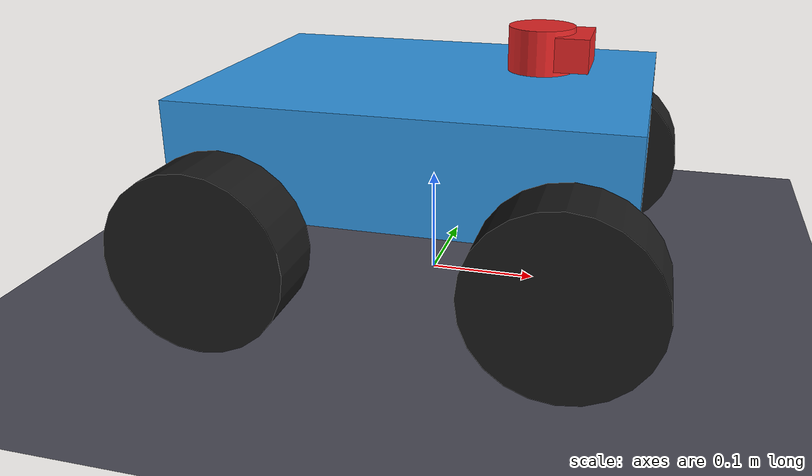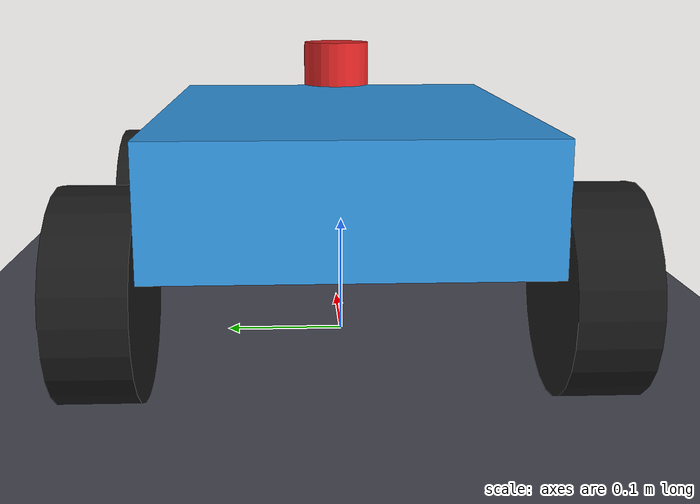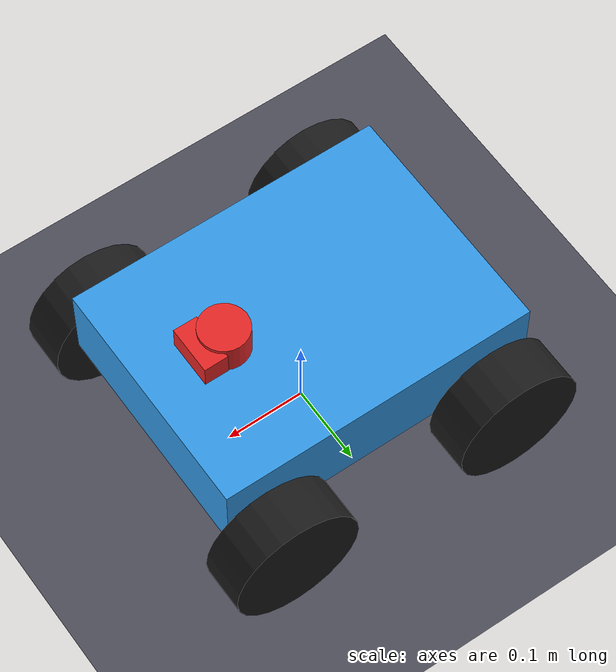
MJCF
<mujoco model="car_with_camera">
  <worldbody>
    <light pos="0 0 3" dir="0 0 -1"/>
    <geom name="floor" type="plane" size="5 5 0.1" rgba="0.3 0.3 0.35 1"/>

    <body name="chassis" pos="0 0 0.15">
      <freejoint/>
      <geom type="box" size="0.2 0.15 0.05" rgba="0.2 0.6 0.9 1"/>

      <body name="front_left_wheel" pos="0.15 0.18 -0.07">
        <joint name="front_left_hinge" type="hinge" axis="0 1 0"/>
        <geom type="cylinder" size="0.08 0.03" euler="90 0 0" rgba="0.1 0.1 0.1 1"/>
      </body>
      <body name="front_right_wheel" pos="0.15 -0.18 -0.07">
        <joint name="front_right_hinge" type="hinge" axis="0 1 0"/>
        <geom type="cylinder" size="0.08 0.03" euler="90 0 0" rgba="0.1 0.1 0.1 1"/>
      </body>
      <body name="rear_left_wheel" pos="-0.15 0.18 -0.07">
        <joint name="rear_left_hinge" type="hinge" axis="0 1 0"/>
        <geom type="cylinder" size="0.08 0.03" euler="90 0 0" rgba="0.1 0.1 0.1 1"/>
      </body>
      <body name="rear_right_wheel" pos="-0.15 -0.18 -0.07">
        <joint name="rear_right_hinge" type="hinge" axis="0 1 0"/>
        <geom type="cylinder" size="0.08 0.03" euler="90 0 0" rgba="0.1 0.1 0.1 1"/>
      </body>

      <body name="camera_mount" pos="0.1 0 0.08">
        <joint name="camera_hinge" type="hinge" axis="0 0 1" limited="false"/>
        <geom type="cylinder" size="0.03 0.02" rgba="0.9 0.15 0.15 1"/>
        <geom type="box" size="0.015 0.03 0.015" pos="0.03 0 0" rgba="0.9 0.15 0.15 1"/>
        <camera name="car_camera" pos="0.05 0 0" xyaxes="0 -1 0 0 0 1"/>
      </body>
    </body>
  </worldbody>
</mujoco>
